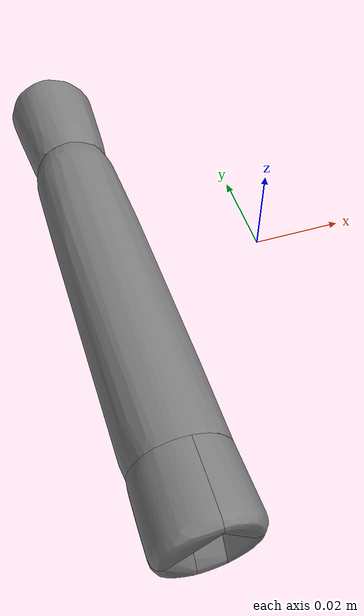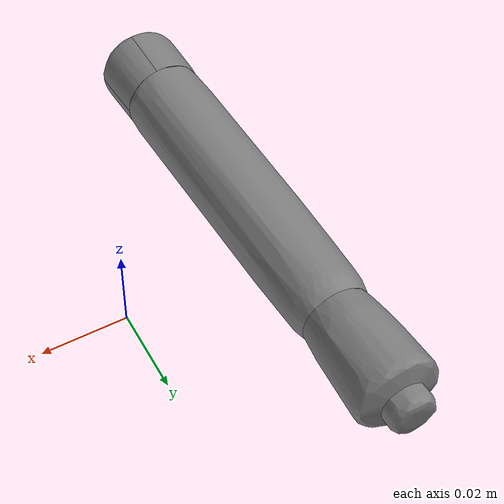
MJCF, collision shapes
<mujoco model="ycb_040_large_marker">
  <compiler meshdir="meshes" texturedir="meshes" angle="radian"/>
  <default>
    <default class="visual"><geom contype="0" conaffinity="0" group="2" density="0"/></default>
    <default class="collision"><geom group="3"/></default>
  </default>
  <asset>
    <texture name="ycb_040_large_marker_tex" type="2d" file="ycb_040_large_marker_texture.png"/>
    <material name="ycb_040_large_marker_mat" texture="ycb_040_large_marker_tex" specular="0.2" shininess="0.3"/>
    <mesh name="ycb_040_large_marker_visual" file="ycb_040_large_marker_visual.obj"/>
    <mesh name="ycb_040_large_marker_hull0" file="ycb_040_large_marker_hull0.obj"/>
    <mesh name="ycb_040_large_marker_hull1" file="ycb_040_large_marker_hull1.obj"/>
    <mesh name="ycb_040_large_marker_hull2" file="ycb_040_large_marker_hull2.obj"/>
    <mesh name="ycb_040_large_marker_hull3" file="ycb_040_large_marker_hull3.obj"/>
    <mesh name="ycb_040_large_marker_hull4" file="ycb_040_large_marker_hull4.obj"/>
    <mesh name="ycb_040_large_marker_hull5" file="ycb_040_large_marker_hull5.obj"/>
    <mesh name="ycb_040_large_marker_hull6" file="ycb_040_large_marker_hull6.obj"/>
    <mesh name="ycb_040_large_marker_hull7" file="ycb_040_large_marker_hull7.obj"/>
  </asset>
  <worldbody>
    <body name="object" pos="0 0 0">
      <freejoint name="object_free"/>
      <geom type="mesh" mesh="ycb_040_large_marker_visual" material="ycb_040_large_marker_mat" class="visual"/>
      <geom type="mesh" mesh="ycb_040_large_marker_hull0" class="collision"/>
      <geom type="mesh" mesh="ycb_040_large_marker_hull1" class="collision"/>
      <geom type="mesh" mesh="ycb_040_large_marker_hull2" class="collision"/>
      <geom type="mesh" mesh="ycb_040_large_marker_hull3" class="collision"/>
      <geom type="mesh" mesh="ycb_040_large_marker_hull4" class="collision"/>
      <geom type="mesh" mesh="ycb_040_large_marker_hull5" class="collision"/>
      <geom type="mesh" mesh="ycb_040_large_marker_hull6" class="collision"/>
      <geom type="mesh" mesh="ycb_040_large_marker_hull7" class="collision"/>
    </body>
  </worldbody>
</mujoco>
